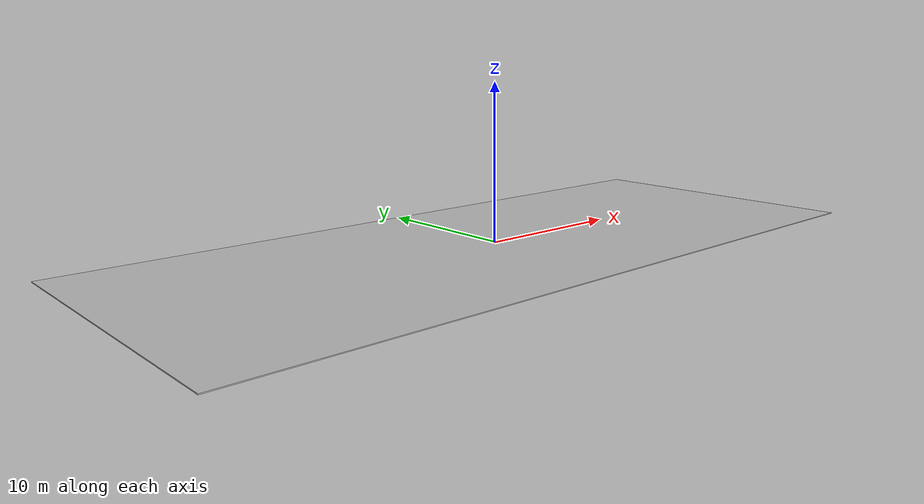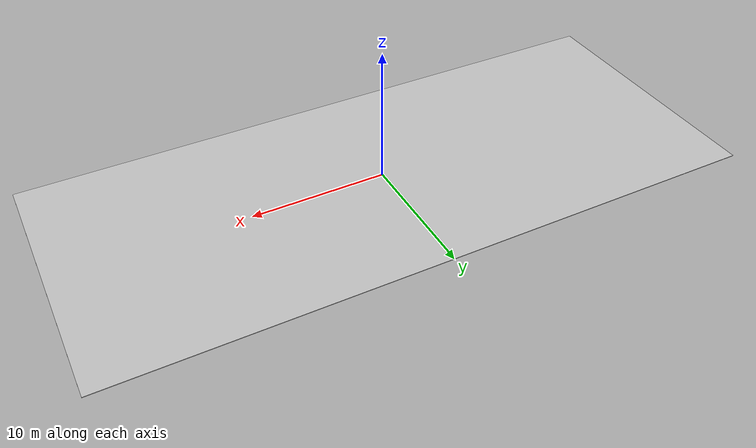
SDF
<?xml version="1.0" ?>
<sdf version="1.6">
  <model name="segway_stage">
    <static>true</static>
    <link name="link">
      <collision name="collision">
        <geometry>
          <mesh>
            <scale>2.4 1 1</scale>
            <uri>model://segway_stage/meshes/park.stl</uri>
          </mesh>
           <surface>
            <friction>
              <ode>
                <mu>1.2</mu>
                <mu2>1.2</mu2>
              </ode>
            </friction>
          </surface>
        </geometry>
      </collision>
      <visual name="visual">
        <geometry>
          <mesh>
            <scale>2.4 1 1</scale>
            <uri>model://segway_stage/meshes/park.dae</uri>
          </mesh>
        </geometry>
      </visual>
    </link>
  </model>
</sdf>
